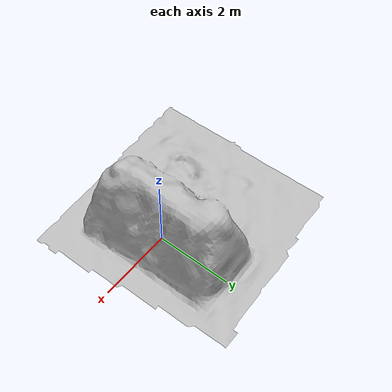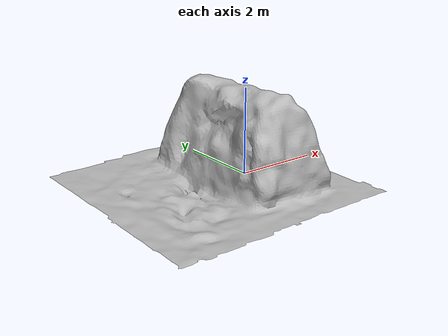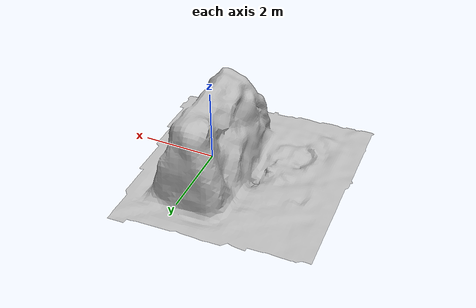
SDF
<?xml version='1.0'?>
<sdf version="1.4">
<model name="swarm_rock">
  <pose>0 0 0 3.14 0 0</pose>
  <static>true</static>
    <link name="link">
      <collision name="collision">
          <geometry>
            <mesh><uri>model://swarm_rock/meshes/swarm_rock.dae</uri></mesh>
          </geometry>
      </collision>
        <visual name="visual">
          <geometry>
            <mesh><uri>model://swarm_rock/meshes/swarm_rock.dae</uri></mesh>
          </geometry>
        </visual>
      </link>
  </model>
</sdf>
